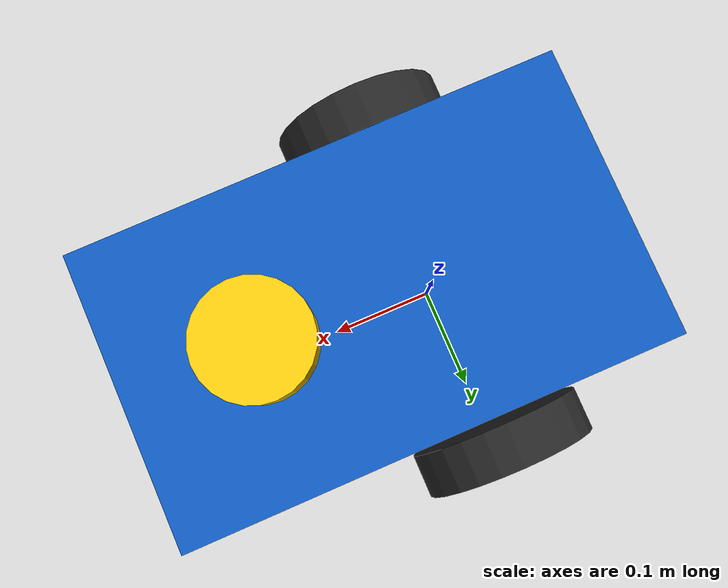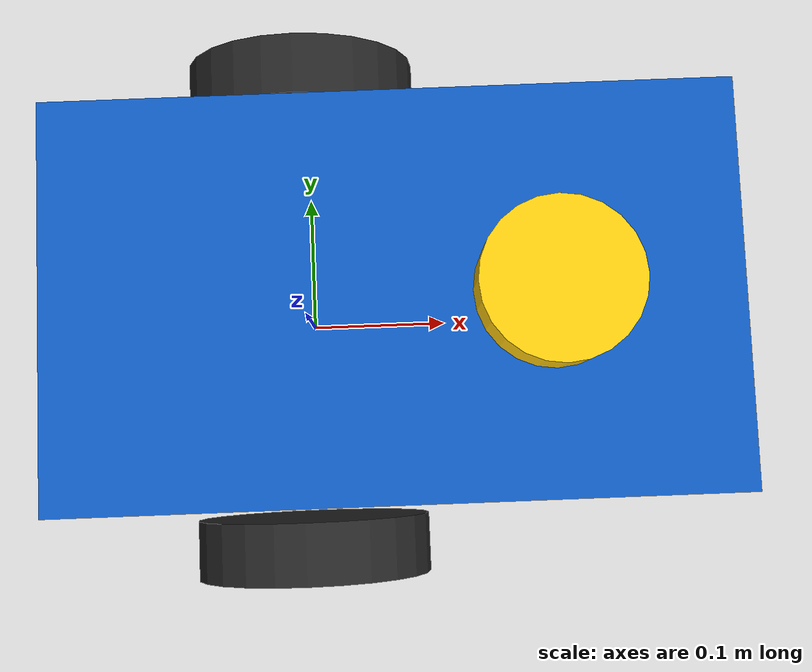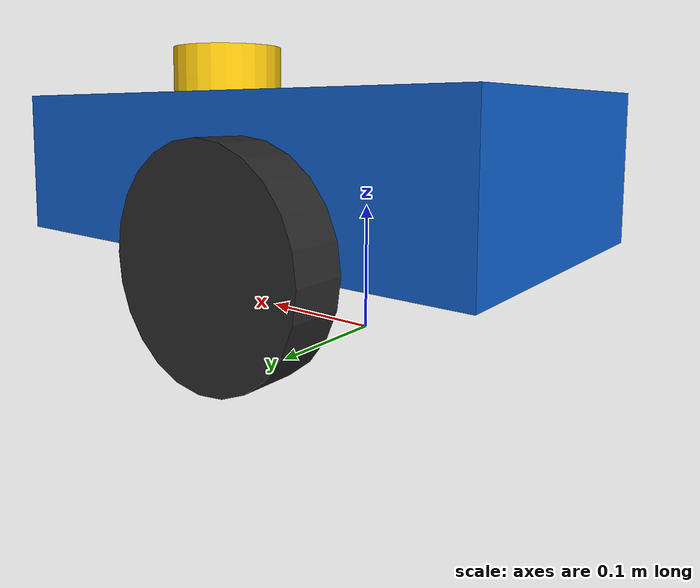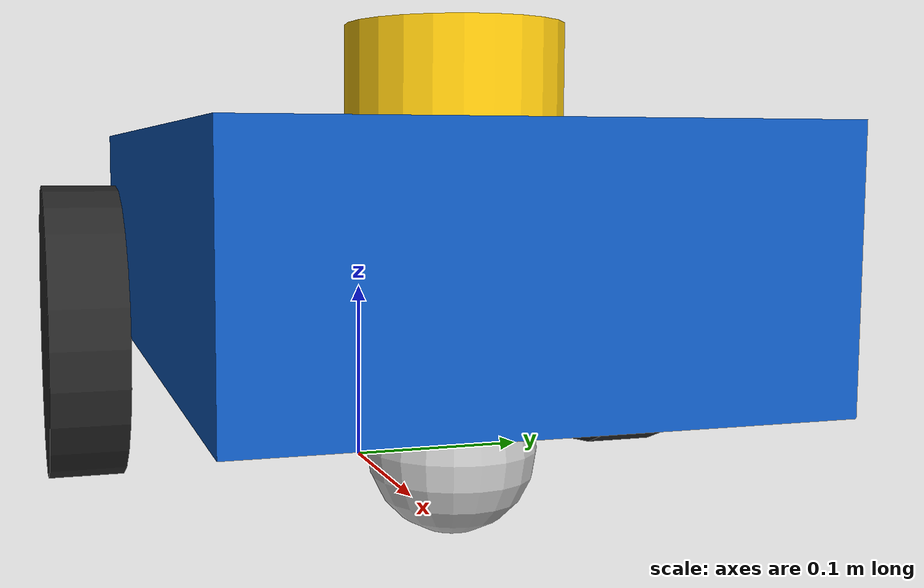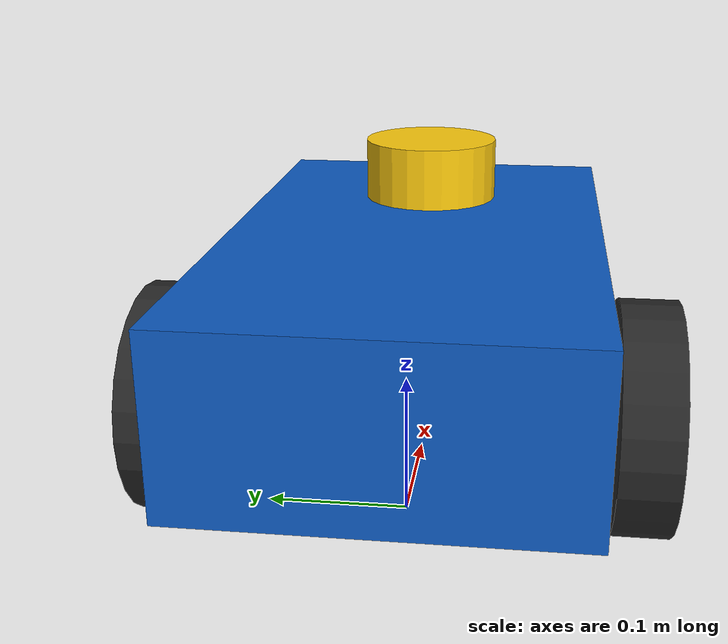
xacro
<?xml version="1.0"?>
<robot xmlns:xacro="http://www.ros.org/wiki/xacro" name="learning_vehicle">

  <!-- DIMENSIONS & PHYSICAL PROPERTIES                                     -->
  <xacro:property name="chassis_length" value="0.44"/>
  <xacro:property name="chassis_width"  value="0.26"/>
  <xacro:property name="chassis_height" value="0.12"/>
  <xacro:property name="chassis_mass"   value="3.0"/>

  <xacro:property name="wheel_radius"     value="0.08"/>
  <xacro:property name="wheel_width"      value="0.04"/>
  <xacro:property name="wheel_separation" value="0.32"/>
  <xacro:property name="wheel_mass"       value="0.4"/>

  <xacro:property name="caster_radius"    value="0.04"/>
  <xacro:property name="caster_offset_x"  value="0.16"/>
  <xacro:property name="caster_mass"      value="0.2"/>

  <!-- MATERIALS / COLORS                                                   -->
  <material name="marine_blue">
    <color rgba="0.05 0.35 0.75 1.0"/>
  </material>
  <material name="bright_yellow">
    <color rgba="1.0 0.8 0.05 1.0"/>
  </material>
  <material name="dark_gray">
    <color rgba="0.15 0.15 0.15 1.0"/>
  </material>
  <material name="silver">
    <color rgba="0.75 0.75 0.75 1.0"/>
  </material>

  <!-- BASE FOOTPRINT (Ground projection, Z = 0)                            -->
  <link name="base_footprint"/>

  <joint name="base_joint" type="fixed">
    <parent link="base_footprint"/>
    <child link="base_link"/>
    <origin xyz="0 0 ${wheel_radius}" rpy="0 0 0"/>
  </joint>

  <!-- BASE LINK & CHASSIS                                                  -->
  <link name="base_link">
    <visual>
      <!-- Main Chassis Box -->
      <origin xyz="0.06 0 0.05" rpy="0 0 0"/>
      <geometry>
        <box size="${chassis_length} ${chassis_width} ${chassis_height}"/>
      </geometry>
      <material name="marine_blue"/>
    </visual>
    <visual>
      <!-- Accent Electronics Dome / Camera Pod -->
      <origin xyz="0.16 0 0.13" rpy="0 0 0"/>
      <geometry>
        <cylinder radius="0.05" length="0.05"/>
      </geometry>
      <material name="bright_yellow"/>
    </visual>
    <collision>
      <origin xyz="0.06 0 0.05" rpy="0 0 0"/>
      <geometry>
        <box size="${chassis_length} ${chassis_width} ${chassis_height}"/>
      </geometry>
    </collision>
    <inertial>
      <origin xyz="0.06 0 0.05" rpy="0 0 0"/>
      <mass value="${chassis_mass}"/>
      <inertia
        ixx="${(1/12) * chassis_mass * (chassis_width*chassis_width + chassis_height*chassis_height)}"
        ixy="0.0" ixz="0.0"
        iyy="${(1/12) * chassis_mass * (chassis_length*chassis_length + chassis_height*chassis_height)}"
        iyz="0.0"
        izz="${(1/12) * chassis_mass * (chassis_length*chassis_length + chassis_width*chassis_width)}"/>
    </inertial>
  </link>

  <!-- LEFT DRIVE WHEEL                                                     -->
  <link name="left_wheel_link">
    <visual>
      <origin xyz="0 0 0" rpy="${pi/2} 0 0"/>
      <geometry>
        <cylinder radius="${wheel_radius}" length="${wheel_width}"/>
      </geometry>
      <material name="dark_gray"/>
    </visual>
    <collision>
      <origin xyz="0 0 0" rpy="${pi/2} 0 0"/>
      <geometry>
        <cylinder radius="${wheel_radius}" length="${wheel_width}"/>
      </geometry>
    </collision>
    <inertial>
      <origin xyz="0 0 0" rpy="${pi/2} 0 0"/>
      <mass value="${wheel_mass}"/>
      <inertia
        ixx="${(1/12) * wheel_mass * (3*wheel_radius*wheel_radius + wheel_width*wheel_width)}"
        ixy="0.0" ixz="0.0"
        iyy="${(1/2) * wheel_mass * (wheel_radius*wheel_radius)}"
        iyz="0.0"
        izz="${(1/12) * wheel_mass * (3*wheel_radius*wheel_radius + wheel_width*wheel_width)}"/>
    </inertial>
  </link>

  <joint name="left_wheel_joint" type="continuous">
    <parent link="base_link"/>
    <child link="left_wheel_link"/>
    <origin xyz="0 ${wheel_separation / 2} 0" rpy="0 0 0"/>
    <axis xyz="0 1 0"/>
  </joint>

  <!-- RIGHT DRIVE WHEEL                                                    -->
  <link name="right_wheel_link">
    <visual>
      <origin xyz="0 0 0" rpy="${pi/2} 0 0"/>
      <geometry>
        <cylinder radius="${wheel_radius}" length="${wheel_width}"/>
      </geometry>
      <material name="dark_gray"/>
    </visual>
    <collision>
      <origin xyz="0 0 0" rpy="${pi/2} 0 0"/>
      <geometry>
        <cylinder radius="${wheel_radius}" length="${wheel_width}"/>
      </geometry>
    </collision>
    <inertial>
      <origin xyz="0 0 0" rpy="${pi/2} 0 0"/>
      <mass value="${wheel_mass}"/>
      <inertia
        ixx="${(1/12) * wheel_mass * (3*wheel_radius*wheel_radius + wheel_width*wheel_width)}"
        ixy="0.0" ixz="0.0"
        iyy="${(1/2) * wheel_mass * (wheel_radius*wheel_radius)}"
        iyz="0.0"
        izz="${(1/12) * wheel_mass * (3*wheel_radius*wheel_radius + wheel_width*wheel_width)}"/>
    </inertial>
  </link>

  <joint name="right_wheel_joint" type="continuous">
    <parent link="base_link"/>
    <child link="right_wheel_link"/>
    <origin xyz="0 -${wheel_separation / 2} 0" rpy="0 0 0"/>
    <axis xyz="0 1 0"/>
  </joint>

  <!-- CASTER WHEEL (Support / Stabilizer)                                  -->
  <link name="caster_wheel_link">
    <visual>
      <origin xyz="0 0 0" rpy="0 0 0"/>
      <geometry>
        <sphere radius="${caster_radius}"/>
      </geometry>
      <material name="silver"/>
    </visual>
    <collision>
      <origin xyz="0 0 0" rpy="0 0 0"/>
      <geometry>
        <sphere radius="${caster_radius}"/>
      </geometry>
    </collision>
    <inertial>
      <origin xyz="0 0 0" rpy="0 0 0"/>
      <mass value="${caster_mass}"/>
      <inertia
        ixx="${(2/5) * caster_mass * caster_radius * caster_radius}"
        ixy="0.0" ixz="0.0"
        iyy="${(2/5) * caster_mass * caster_radius * caster_radius}"
        iyz="0.0"
        izz="${(2/5) * caster_mass * caster_radius * caster_radius}"/>
    </inertial>
  </link>

  <joint name="caster_wheel_joint" type="fixed">
    <parent link="base_link"/>
    <child link="caster_wheel_link"/>
    <origin xyz="${caster_offset_x} 0 -${wheel_radius - caster_radius}" rpy="0 0 0"/>
  </joint>

  <!-- GAZEBO PHYSICS & SYSTEM PLUGINS                                      -->
  <!-- Wheel Friction Configuration -->
  <gazebo reference="left_wheel_link">
    <mu1>1.0</mu1>
    <mu2>1.0</mu2>
  </gazebo>

  <gazebo reference="right_wheel_link">
    <mu1>1.0</mu1>
    <mu2>1.0</mu2>
  </gazebo>

  <!-- Caster Wheel Low Friction (free-sliding omnidirectional support) -->
  <gazebo reference="caster_wheel_link">
    <mu1>0.001</mu1>
    <mu2>0.001</mu2>
  </gazebo>

  <gazebo reference="base_link">
  </gazebo>

  <!-- Modern Gazebo Harmonic Differential Drive Plugin -->
  <gazebo>
    <plugin
      filename="gz-sim-diff-drive-system"
      name="gz::sim::systems::DiffDrive">
      <!-- Joints -->
      <left_joint>left_wheel_joint</left_joint>
      <right_joint>right_wheel_joint</right_joint>

      <!-- Kinematics -->
      <wheel_separation>${wheel_separation}</wheel_separation>
      <wheel_radius>${wheel_radius}</wheel_radius>

      <!-- Limits -->
      <max_linear_acceleration>3.0</max_linear_acceleration>
      <max_angular_acceleration>4.0</max_angular_acceleration>
      <min_linear_velocity>-1.5</min_linear_velocity>
      <max_linear_velocity>1.5</max_linear_velocity>
      <min_angular_velocity>-3.0</min_angular_velocity>
      <max_angular_velocity>3.0</max_angular_velocity>

      <!-- Topics -->
      <topic>/vehicle/cmd_vel</topic>
      <odom_topic>/vehicle/odom</odom_topic>
      <tf_topic>/tf</tf_topic>
      <frame_id>odom</frame_id>
      <child_frame_id>base_footprint</child_frame_id>
      <odom_publish_frequency>20</odom_publish_frequency>
    </plugin>

    <!-- Joint State Publisher Plugin (publishes wheel rotation angles) -->
    <plugin
      filename="gz-sim-joint-state-publisher-system"
      name="gz::sim::systems::JointStatePublisher">
      <topic>/joint_states</topic>
    </plugin>
  </gazebo>

</robot>
